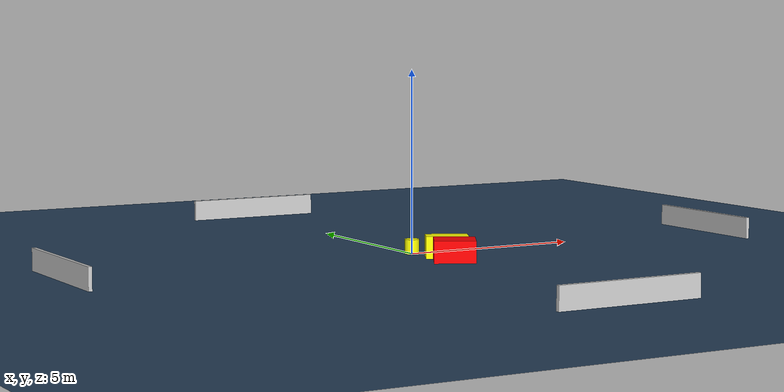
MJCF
<?xml version="1.0" ?>
<mujoco model="generated_environment">
  <option timestep="0.01" integrator="RK4" cone="elliptic"/>
  <default>
    <geom density="1"/>
  </default>
  <asset>
    <texture builtin="gradient" height="3072" name="skybox" rgb1="0.3 0.5 0.7" rgb2="0 0 0" type="skybox" width="512"/>
    <texture builtin="checker" height="300" name="groundplane" rgb1="0.2 0.3 0.4" rgb2="0.1 0.2 0.3" type="2d" width="300"/>
    <material name="groundplane" reflectance="0.2" texrepeat="5 5" texture="groundplane"/>
  </asset>
  <worldbody>
    <light dir="0 0 -1" directional="true" pos="0 0 1.5"/>
    <geom condim="3" friction="0.5 0.005 0.001" material="groundplane" name="floor" pos="0 0 0" size="0 0 0.05" type="plane"/>
    <body name="walls">
      <geom name="wall_1" condim="4" pos="-10.0 0.0 0.3" rgba="0.800000011920929 0.800000011920929 0.800000011920929 1.0" size="0.05 2.0 0.3" type="box"/>
      <geom name="wall_2" condim="4" pos="10.0 0.0 0.3" rgba="0.800000011920929 0.800000011920929 0.800000011920929 1.0" size="0.05 2.0 0.3" type="box"/>
      <geom name="wall_3" condim="4" pos="0.0 -10.0 0.3" rgba="0.800000011920929 0.800000011920929 0.800000011920929 1.0" size="2.0 0.05 0.3" type="box"/>
      <geom name="wall_4" condim="4" pos="0.0 10.0 0.3" rgba="0.800000011920929 0.800000011920929 0.800000011920929 1.0" size="2.0 0.05 0.3" type="box"/>
    </body>
    <body name="robot">
      <joint name="joint_x" type="slide" pos="0 0 0" axis="1 0 0"/>
      <joint name="joint_y" type="slide" pos="0 0 0" axis="0 1 0"/>
      <geom name="robot" type="cylinder" pos="0.0 0.0 0.2" size="0.2 0.2 0.0" mass="5.0" friction="1.0 0.005 0.0001" condim="4" rgba="1.0 1.0 0.0 1.0"/>
    </body>
    <body name="obstacle_1_movable">
      <geom name="obstacle_1_movable" condim="4" pos="0.4368974609060524 -1.1137594813785088 0.3" euler="0 0 153.43412743830444" friction="0.0 0.005 0.001" rgba="1.0 1.0 0.0 1.0" size="0.5722458507912731 0.3074099595375813 0.3" type="box" mass="0.1"/>
      <joint type="free"/>
    </body>
    <body name="obstacle_2_static">
      <geom name="obstacle_2_static" condim="4" pos="0.21384349958268153 -1.8914442355258096 0.3" euler="0 0 150.97443720870658" friction="0.0 0.005 0.001" rgba="1.0 0.0 0.0 1.0" size="0.5552249142370262 0.4493473949238237 0.3" type="box"/>
    </body>
  </worldbody>
  <actuator>
    <motor name="actuator_x" joint="joint_x" gear="1" ctrlrange="-1 1"/>
    <motor name="actuator_y" joint="joint_y" gear="1" ctrlrange="-1 1"/>
  </actuator>
</mujoco>
